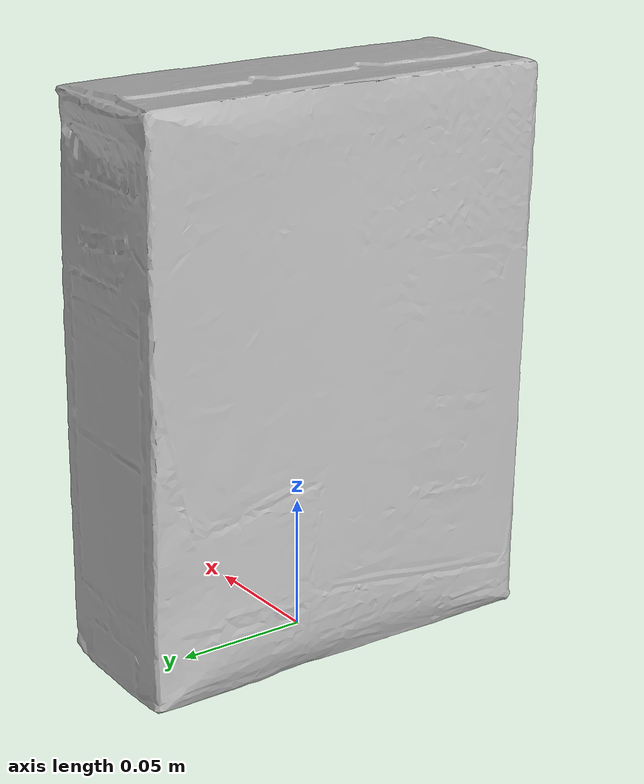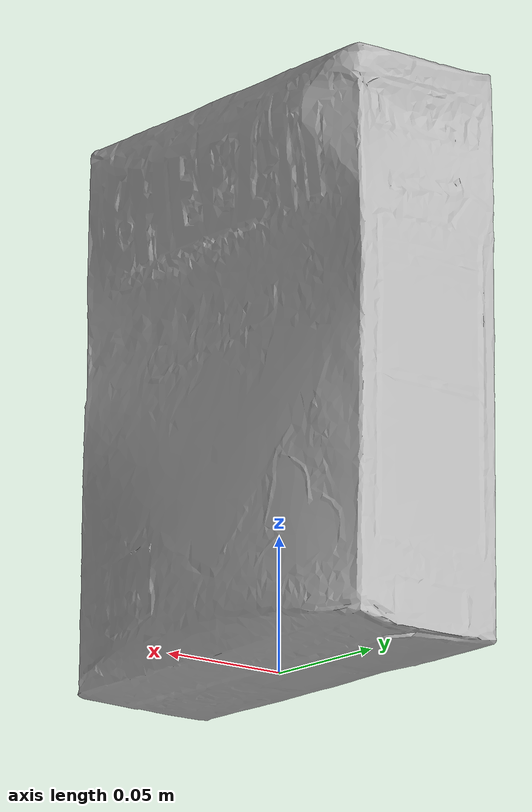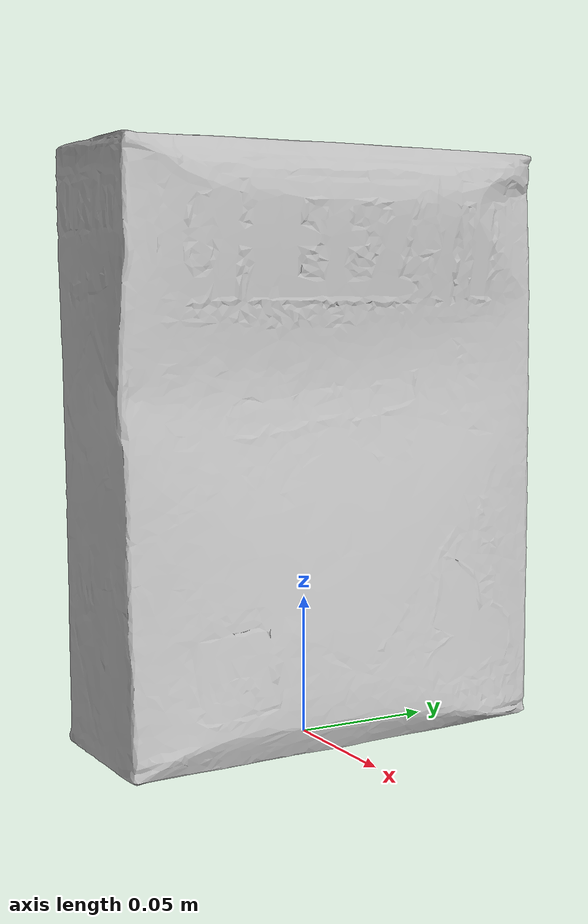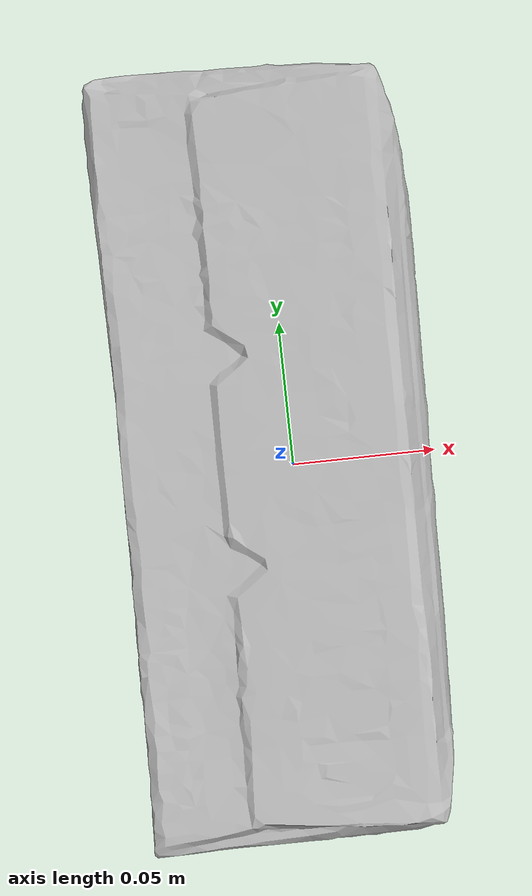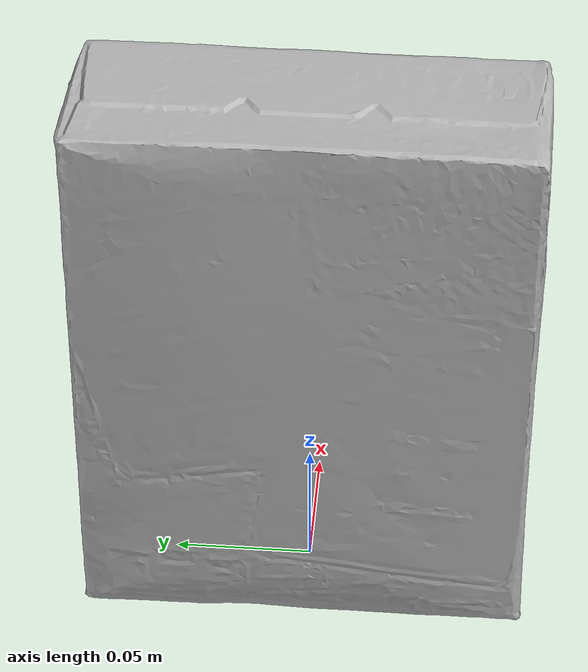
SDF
<?xml version="1.0"?>
<sdf version="1.6">
  <model name="cracker_box">
    <link name="link">
      <inertial>
        <mass>0.411</mass>
        <inertia>
          <ixx>0.002365442</ixx>
          <ixy>0.0</ixy>
          <ixz>0.0</ixz>
          <iyy>0.001633725</iyy>
          <iyz>0.0</iyz>
          <izz>0.000978317</izz>
        </inertia>
        <pose>0 0 0.105 0 0 0</pose>
      </inertial>
      <collision name="collision">
        <pose>0 0 0.105 0 0 0</pose>
        <geometry>
          <box>
            <size>0.060 0.158 0.210</size>
          </box>
        </geometry>
      </collision>
      <visual name="visual">
        <!-- 用网格包围盒中心对齐简化 box collision 中心。 -->
        <pose>-0.001923800 0.000081210 -0.001755519 0 0 0</pose>
        <geometry>
          <mesh>
            <uri>model://cracker_box/meshes/textured.dae</uri>
          </mesh>
        </geometry>
      </visual>
    </link>
  </model>
</sdf>
